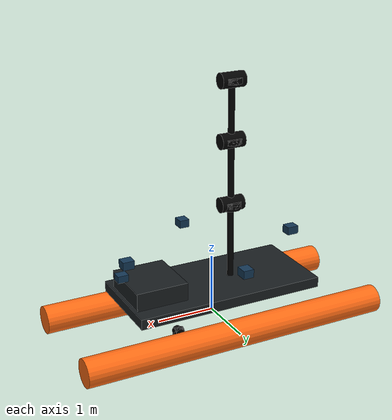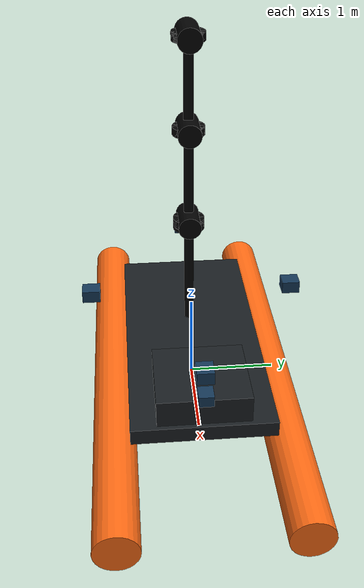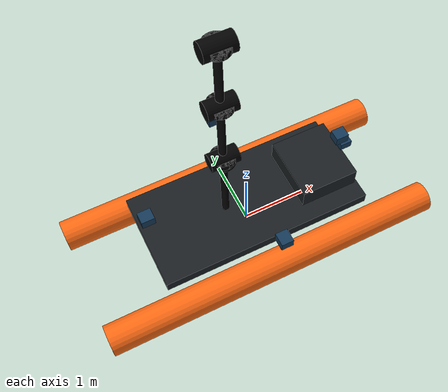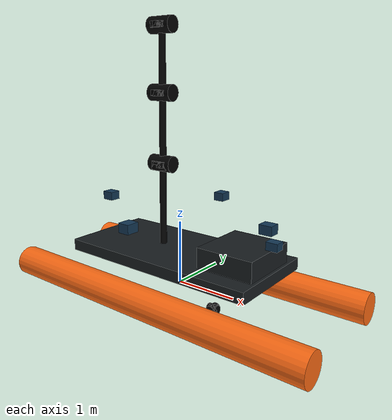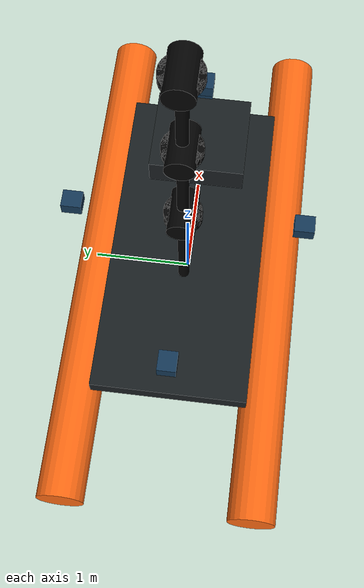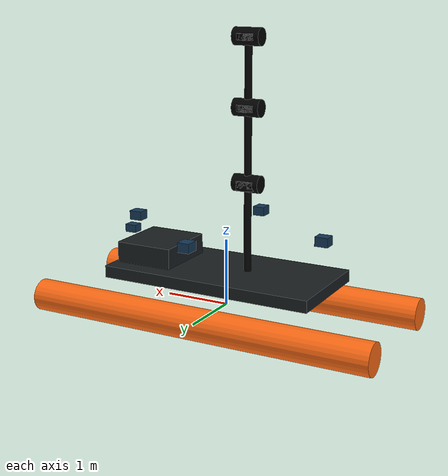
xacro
<?xml version="1.0"?>
<robot xmlns:xacro="http://www.ros.org/wiki/xacro" name="fog_usv">
  <xacro:arg name="enable_c3_mmwave" default="true"/>

  <material name="pontoon_orange">
    <color rgba="1.0 0.42 0.08 1.0"/>
  </material>
  <material name="deck_dark">
    <color rgba="0.10 0.12 0.13 1.0"/>
  </material>
  <material name="sensor_black">
    <color rgba="0.01 0.01 0.01 1.0"/>
  </material>
  <material name="camera_blue">
    <color rgba="0.08 0.22 0.34 1.0"/>
  </material>

  <xacro:macro name="c3_raw_mmwave_sensor" params="name height yaw topic">
    <link name="${name}_link">
      <visual>
        <origin xyz="0 0 0" rpy="0 0 0"/>
        <geometry>
          <cylinder radius="0.18" length="0.09"/>
        </geometry>
        <material name="sensor_black"/>
      </visual>
    </link>
    <joint name="${name}_joint" type="fixed">
      <parent link="base_link"/>
      <child link="${name}_link"/>
      <origin xyz="-0.35 0 ${height}" rpy="0 0 ${yaw}"/>
    </joint>

    <gazebo reference="${name}_link">
      <sensor type="ray" name="${name}_raw_sensor">
        <pose>0 0 0 0 0 0</pose>
        <visualize>false</visualize>
        <update_rate>15</update_rate>
        <ray>
          <scan>
            <horizontal>
              <!-- Four 110 degree sectors overlap by 20 degrees to avoid
                   cardinal-direction blind gaps from hull occlusion. -->
              <samples>385</samples>
              <resolution>1</resolution>
              <min_angle>-0.959931</min_angle>
              <max_angle>0.959931</max_angle>
            </horizontal>
          </scan>
          <range>
            <min>1.0</min>
            <max>800.0</max>
            <resolution>0.5</resolution>
          </range>
          <noise>
            <type>gaussian</type>
            <mean>0.0</mean>
            <stddev>0.08</stddev>
          </noise>
        </ray>
        <plugin name="gazebo_ros_${name}_raw" filename="libgazebo_ros_ray_sensor.so">
          <ros>
            <remapping>~/out:=${topic}</remapping>
          </ros>
          <output_type>sensor_msgs/LaserScan</output_type>
          <frame_name>${name}_link</frame_name>
        </plugin>
      </sensor>
    </gazebo>
  </xacro:macro>

  <link name="base_footprint"/>
  <joint name="base_footprint_joint" type="fixed">
    <parent link="base_footprint"/>
    <child link="base_link"/>
    <origin xyz="0 0 0" rpy="0 0 0"/>
  </joint>

  <link name="base_link">
    <inertial>
      <origin xyz="0 0 0.28" rpy="0 0 0"/>
      <mass value="240.0"/>
      <inertia ixx="120.0" ixy="0.0" ixz="0.0" iyy="260.0" iyz="0.0" izz="320.0"/>
    </inertial>

    <visual name="port_pontoon">
      <origin xyz="0 0.95 0.0" rpy="0 ${pi / 2.0} 0"/>
      <geometry>
        <cylinder radius="0.24" length="5.4"/>
      </geometry>
      <material name="pontoon_orange"/>
    </visual>
    <visual name="starboard_pontoon">
      <origin xyz="0 -0.95 0.0" rpy="0 ${pi / 2.0} 0"/>
      <geometry>
        <cylinder radius="0.24" length="5.4"/>
      </geometry>
      <material name="pontoon_orange"/>
    </visual>
    <visual name="deck">
      <origin xyz="0 0 0.48" rpy="0 0 0"/>
      <geometry>
        <box size="3.3 1.55 0.18"/>
      </geometry>
      <material name="deck_dark"/>
    </visual>
    <visual name="bow_bridge">
      <origin xyz="1.15 0 0.72" rpy="0 0 0"/>
      <geometry>
        <box size="0.9 1.0 0.32"/>
      </geometry>
      <material name="deck_dark"/>
    </visual>
    <visual name="sensor_mast">
      <origin xyz="-0.35 0 2.29" rpy="0 0 0"/>
      <geometry>
        <cylinder radius="0.055" length="3.42"/>
      </geometry>
      <material name="sensor_black"/>
    </visual>
    <visual name="mmwave_mount_1p9m">
      <origin xyz="-0.35 0 1.90" rpy="0 ${pi / 2.0} 0"/>
      <geometry>
        <cylinder radius="0.13" length="0.42"/>
      </geometry>
      <material name="sensor_black"/>
    </visual>
    <visual name="mmwave_mount_3m">
      <origin xyz="-0.35 0 3.00" rpy="0 ${pi / 2.0} 0"/>
      <geometry>
        <cylinder radius="0.13" length="0.42"/>
      </geometry>
      <material name="sensor_black"/>
    </visual>
    <visual name="mmwave_mount_4m">
      <origin xyz="-0.35 0 4.00" rpy="0 ${pi / 2.0} 0"/>
      <geometry>
        <cylinder radius="0.13" length="0.42"/>
      </geometry>
      <material name="sensor_black"/>
    </visual>

    <collision name="port_pontoon_collision">
      <origin xyz="0 0.95 0.0" rpy="0 ${pi / 2.0} 0"/>
      <geometry>
        <cylinder radius="0.26" length="5.5"/>
      </geometry>
    </collision>
    <collision name="starboard_pontoon_collision">
      <origin xyz="0 -0.95 0.0" rpy="0 ${pi / 2.0} 0"/>
      <geometry>
        <cylinder radius="0.26" length="5.5"/>
      </geometry>
    </collision>
    <collision name="deck_collision">
      <origin xyz="0 0 0.48" rpy="0 0 0"/>
      <geometry>
        <box size="3.4 1.65 0.22"/>
      </geometry>
    </collision>
  </link>

  <gazebo reference="base_link">
    <gravity>false</gravity>
    <velocity_decay>
      <linear>0.25</linear>
      <angular>0.35</angular>
    </velocity_decay>
    <material>Gazebo/Orange</material>
  </gazebo>

  <link name="mmwave_radar_link">
    <visual>
      <origin xyz="0 0 0" rpy="0 0 0"/>
      <geometry>
        <cylinder radius="0.18" length="0.09"/>
      </geometry>
      <material name="sensor_black"/>
    </visual>
  </link>
  <joint name="mmwave_radar_joint" type="fixed">
    <parent link="base_link"/>
    <child link="mmwave_radar_link"/>
    <origin xyz="-0.35 0 1.86" rpy="0 0 0"/>
  </joint>

  <gazebo reference="mmwave_radar_link">
    <sensor type="ray" name="mmwave_radar_sensor">
      <pose>0 0 0 0 0 0</pose>
      <visualize>false</visualize>
      <update_rate>8</update_rate>
      <ray>
        <scan>
          <horizontal>
            <samples>360</samples>
            <resolution>1</resolution>
            <min_angle>-${pi}</min_angle>
            <max_angle>${pi}</max_angle>
          </horizontal>
        </scan>
        <range>
          <min>0.25</min>
          <max>120.0</max>
          <resolution>0.02</resolution>
        </range>
        <noise>
          <type>gaussian</type>
          <mean>0.0</mean>
          <stddev>0.01</stddev>
        </noise>
      </ray>
      <plugin name="gazebo_ros_mmwave_radar" filename="libgazebo_ros_ray_sensor.so">
        <ros>
          <remapping>~/out:=mmwave_radar/scan</remapping>
        </ros>
        <output_type>sensor_msgs/LaserScan</output_type>
        <frame_name>mmwave_radar_link</frame_name>
      </plugin>
    </sensor>
  </gazebo>

  <xacro:if value="$(arg enable_c3_mmwave)">
    <xacro:c3_raw_mmwave_sensor name="radar_3m_front" height="3.0" yaw="0.0" topic="radar/front/h3m/raw_scan"/>
    <xacro:c3_raw_mmwave_sensor name="radar_3m_right" height="3.0" yaw="-1.570796" topic="radar/right/h3m/raw_scan"/>
    <xacro:c3_raw_mmwave_sensor name="radar_3m_back" height="3.0" yaw="3.141593" topic="radar/back/h3m/raw_scan"/>
    <xacro:c3_raw_mmwave_sensor name="radar_3m_left" height="3.0" yaw="1.570796" topic="radar/left/h3m/raw_scan"/>
    <xacro:c3_raw_mmwave_sensor name="radar_4m_front" height="4.0" yaw="0.0" topic="radar/front/h4m/raw_scan"/>
    <xacro:c3_raw_mmwave_sensor name="radar_4m_right" height="4.0" yaw="-1.570796" topic="radar/right/h4m/raw_scan"/>
    <xacro:c3_raw_mmwave_sensor name="radar_4m_back" height="4.0" yaw="3.141593" topic="radar/back/h4m/raw_scan"/>
    <xacro:c3_raw_mmwave_sensor name="radar_4m_left" height="4.0" yaw="1.570796" topic="radar/left/h4m/raw_scan"/>
    <xacro:c3_raw_mmwave_sensor name="radar_1p9m_front" height="1.9" yaw="0.0" topic="radar/front/h1p9m/raw_scan"/>
    <xacro:c3_raw_mmwave_sensor name="radar_1p9m_right" height="1.9" yaw="-1.570796" topic="radar/right/h1p9m/raw_scan"/>
    <xacro:c3_raw_mmwave_sensor name="radar_1p9m_back" height="1.9" yaw="3.141593" topic="radar/back/h1p9m/raw_scan"/>
    <xacro:c3_raw_mmwave_sensor name="radar_1p9m_left" height="1.9" yaw="1.570796" topic="radar/left/h1p9m/raw_scan"/>
  </xacro:if>

  <link name="depth_camera_link">
    <visual>
      <geometry>
        <box size="0.18 0.16 0.12"/>
      </geometry>
      <material name="camera_blue"/>
    </visual>
  </link>
  <joint name="depth_camera_joint" type="fixed">
    <parent link="base_link"/>
    <child link="depth_camera_link"/>
    <origin xyz="1.65 0 0.98" rpy="0 0 0"/>
  </joint>

  <gazebo reference="depth_camera_link">
    <sensor type="depth" name="depth_camera">
      <pose>0 0 0 0 0 0</pose>
      <visualize>false</visualize>
      <update_rate>10.0</update_rate>
      <camera>
        <horizontal_fov>1.3962634</horizontal_fov>
        <image>
          <width>640</width>
          <height>480</height>
          <format>R8G8B8</format>
        </image>
        <clip>
          <near>0.05</near>
          <far>80.0</far>
        </clip>
      </camera>
      <plugin name="gazebo_ros_depth_camera" filename="libgazebo_ros_camera.so">
        <ros>
          <remapping>~/image_raw:=depth_camera/image_raw</remapping>
          <remapping>~/depth/image_raw:=depth_camera/depth/image_raw</remapping>
          <remapping>~/camera_info:=depth_camera/camera_info</remapping>
        </ros>
        <camera_name>depth_camera</camera_name>
        <frame_name>depth_camera_link</frame_name>
        <min_depth>0.1</min_depth>
        <max_depth>80.0</max_depth>
      </plugin>
    </sensor>
  </gazebo>

  <!-- Four overlapping 110 degree gated RGB-D cameras provide full-surround vision. -->
  <xacro:macro name="c3_gated_camera_sensor" params="name x y z yaw topic visualize">
    <link name="${name}_link">
      <visual>
        <geometry>
          <box size="0.20 0.18 0.14"/>
        </geometry>
        <material name="camera_blue"/>
      </visual>
    </link>
    <joint name="${name}_joint" type="fixed">
      <parent link="base_link"/>
      <child link="${name}_link"/>
      <origin xyz="${x} ${y} ${z}" rpy="0 0 ${yaw}"/>
    </joint>
    <gazebo reference="${name}_link">
      <sensor type="depth" name="${name}">
        <pose>0 0 0 0 0 0</pose>
        <visualize>${visualize}</visualize>
        <update_rate>12.0</update_rate>
        <camera>
          <horizontal_fov>1.919862</horizontal_fov>
          <image>
            <width>640</width>
            <height>480</height>
            <format>R8G8B8</format>
          </image>
          <clip>
            <near>0.05</near>
            <far>120.0</far>
          </clip>
        </camera>
        <plugin name="gazebo_ros_${name}" filename="libgazebo_ros_camera.so">
          <ros>
            <remapping>~/image_raw:=${topic}/image_raw</remapping>
            <remapping>~/depth/image_raw:=${topic}/depth/image_raw</remapping>
            <remapping>~/camera_info:=${topic}/camera_info</remapping>
          </ros>
          <camera_name>${topic}</camera_name>
          <frame_name>${name}_link</frame_name>
          <min_depth>0.05</min_depth>
          <max_depth>120.0</max_depth>
        </plugin>
      </sensor>
    </gazebo>
  </xacro:macro>

  <xacro:c3_gated_camera_sensor name="gated_camera" x="1.55" y="0" z="1.20" yaw="0" topic="gated_camera" visualize="true"/>
  <xacro:c3_gated_camera_sensor name="gated_camera_right" x="0" y="-1.15" z="1.20" yaw="-1.570796" topic="gated_camera/right" visualize="false"/>
  <xacro:c3_gated_camera_sensor name="gated_camera_back" x="-1.55" y="0" z="1.20" yaw="3.141593" topic="gated_camera/back" visualize="false"/>
  <xacro:c3_gated_camera_sensor name="gated_camera_left" x="0" y="1.15" z="1.20" yaw="1.570796" topic="gated_camera/left" visualize="false"/>

  <xacro:macro name="sonar_sector_sensor" params="name yaw topic">
  <link name="${name}_link">
    <visual>
      <origin xyz="0 0 0" rpy="0 ${pi / 2.0} 0"/>
      <geometry>
        <cylinder radius="0.08" length="0.16"/>
      </geometry>
      <material name="sensor_black"/>
    </visual>
  </link>
  <joint name="${name}_joint" type="fixed">
    <parent link="base_link"/>
    <child link="${name}_link"/>
    <origin xyz="0.65 0 -0.28" rpy="0 0 ${yaw}"/>
  </joint>

  <gazebo reference="${name}_link">
    <sensor type="ray" name="${name}_sensor">
      <pose>0 0 0 0 0 0</pose>
      <visualize>false</visualize>
      <update_rate>6</update_rate>
      <ray>
        <scan>
          <horizontal>
            <samples>91</samples>
            <resolution>1</resolution>
            <min_angle>-0.785398</min_angle>
            <max_angle>0.785398</max_angle>
          </horizontal>
        </scan>
        <range>
          <min>4.0</min>
          <max>60.0</max>
          <resolution>0.03</resolution>
        </range>
      </ray>
      <plugin name="gazebo_ros_${name}" filename="libgazebo_ros_ray_sensor.so">
        <ros>
          <remapping>~/out:=${topic}</remapping>
        </ros>
        <output_type>sensor_msgs/LaserScan</output_type>
        <frame_name>${name}_link</frame_name>
      </plugin>
    </sensor>
  </gazebo>
  </xacro:macro>

  <xacro:sonar_sector_sensor name="sonar_front" yaw="0.0" topic="sonar/scan"/>
  <xacro:sonar_sector_sensor name="sonar_right" yaw="-1.570796" topic="sonar/right_scan"/>
  <xacro:sonar_sector_sensor name="sonar_back" yaw="3.141593" topic="sonar/back_scan"/>
  <xacro:sonar_sector_sensor name="sonar_left" yaw="1.570796" topic="sonar/left_scan"/>
</robot>
